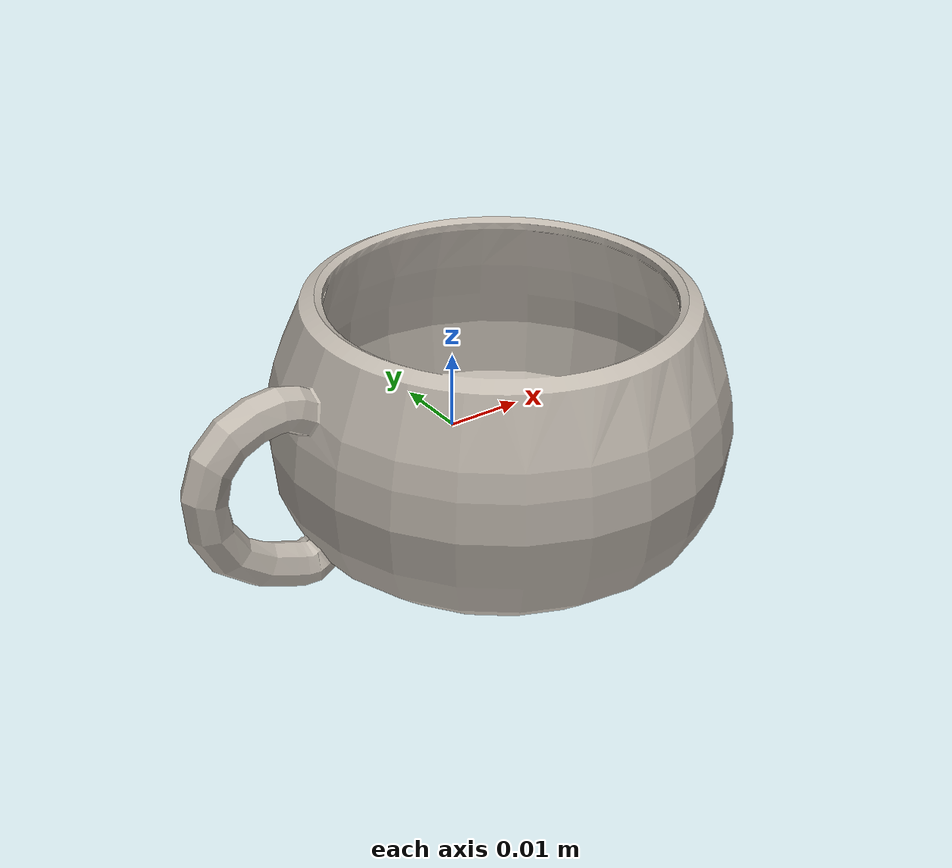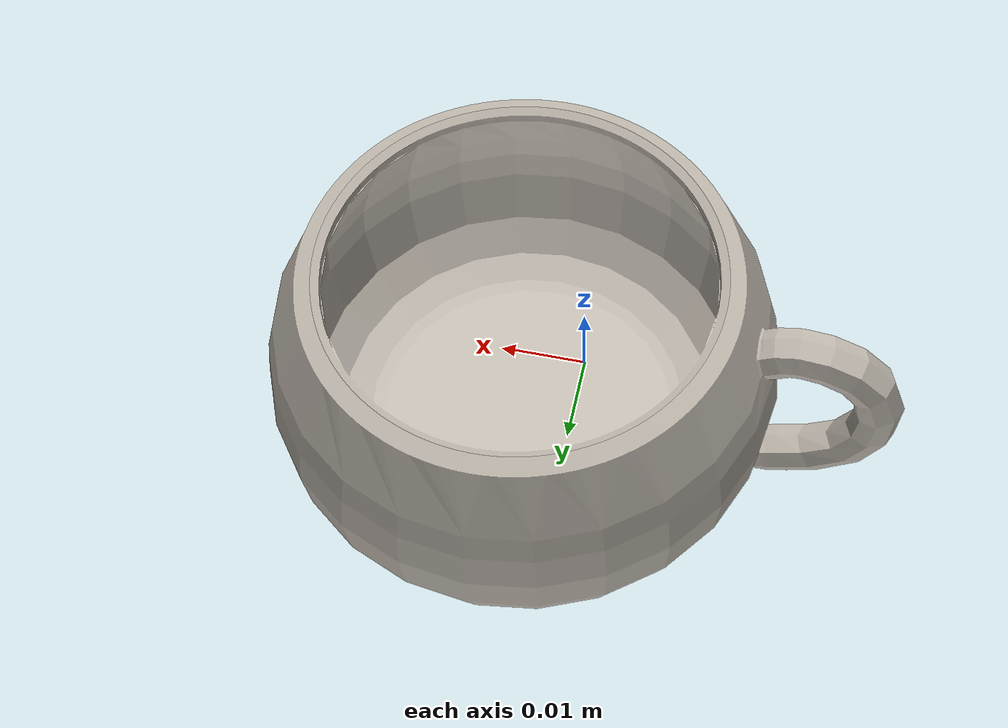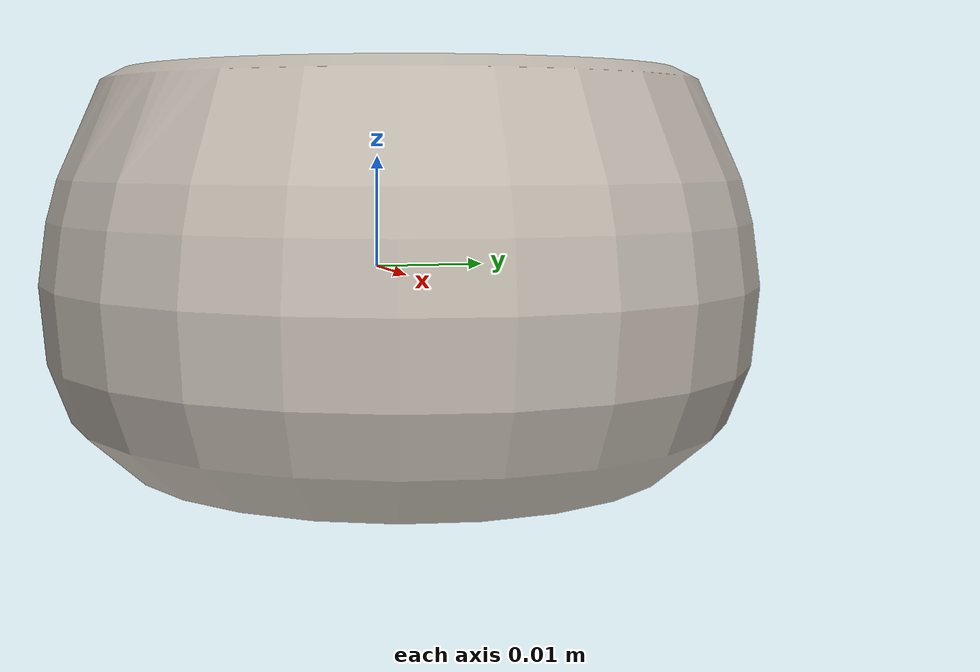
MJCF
<mujoco model="mug_8">
  <asset>
    <texture file="/home/abhiram03/Desktop/mimicgen/robosuite-kitchen/robosuite/models/assets/textures/ceramic.png" name="tex-mug_8" type="2d"/>
    <material name="mug_8" reflectance="0.5" texrepeat="1 1" texture="tex-mug_8" texuniform="false"/>
    <mesh file="visual/model_normalized_0.obj" name="model_normalized_0_vis" scale="0.07499999999999998 0.07499999999999998 0.07499999999999998" refquat="5.551115123125783e-17 0.0 0.0 0.9999999999999998"/>
    <mesh file="collision/model_normalized_collision_13.obj" name="model_normalized_collision_13._coll" scale="0.07499999999999998 0.07499999999999998 0.07499999999999998" refquat="5.551115123125783e-17 0.0 0.0 0.9999999999999998"/>
    <mesh file="collision/model_normalized_collision_15.obj" name="model_normalized_collision_15._coll" scale="0.07499999999999998 0.07499999999999998 0.07499999999999998" refquat="5.551115123125783e-17 0.0 0.0 0.9999999999999998"/>
    <mesh file="collision/model_normalized_collision_10.obj" name="model_normalized_collision_10._coll" scale="0.07499999999999998 0.07499999999999998 0.07499999999999998" refquat="5.551115123125783e-17 0.0 0.0 0.9999999999999998"/>
    <mesh file="collision/model_normalized_collision_26.obj" name="model_normalized_collision_26._coll" scale="0.07499999999999998 0.07499999999999998 0.07499999999999998" refquat="5.551115123125783e-17 0.0 0.0 0.9999999999999998"/>
    <mesh file="collision/model_normalized_collision_25.obj" name="model_normalized_collision_25._coll" scale="0.07499999999999998 0.07499999999999998 0.07499999999999998" refquat="5.551115123125783e-17 0.0 0.0 0.9999999999999998"/>
    <mesh file="collision/model_normalized_collision_5.obj" name="model_normalized_collision_5._coll" scale="0.07499999999999998 0.07499999999999998 0.07499999999999998" refquat="5.551115123125783e-17 0.0 0.0 0.9999999999999998"/>
    <mesh file="collision/model_normalized_collision_31.obj" name="model_normalized_collision_31._coll" scale="0.07499999999999998 0.07499999999999998 0.07499999999999998" refquat="5.551115123125783e-17 0.0 0.0 0.9999999999999998"/>
    <mesh file="collision/model_normalized_collision_3.obj" name="model_normalized_collision_3._coll" scale="0.07499999999999998 0.07499999999999998 0.07499999999999998" refquat="5.551115123125783e-17 0.0 0.0 0.9999999999999998"/>
    <mesh file="collision/model_normalized_collision_14.obj" name="model_normalized_collision_14._coll" scale="0.07499999999999998 0.07499999999999998 0.07499999999999998" refquat="5.551115123125783e-17 0.0 0.0 0.9999999999999998"/>
    <mesh file="collision/model_normalized_collision_28.obj" name="model_normalized_collision_28._coll" scale="0.07499999999999998 0.07499999999999998 0.07499999999999998" refquat="5.551115123125783e-17 0.0 0.0 0.9999999999999998"/>
    <mesh file="collision/model_normalized_collision_11.obj" name="model_normalized_collision_11._coll" scale="0.07499999999999998 0.07499999999999998 0.07499999999999998" refquat="5.551115123125783e-17 0.0 0.0 0.9999999999999998"/>
    <mesh file="collision/model_normalized_collision_29.obj" name="model_normalized_collision_29._coll" scale="0.07499999999999998 0.07499999999999998 0.07499999999999998" refquat="5.551115123125783e-17 0.0 0.0 0.9999999999999998"/>
    <mesh file="collision/model_normalized_collision_24.obj" name="model_normalized_collision_24._coll" scale="0.07499999999999998 0.07499999999999998 0.07499999999999998" refquat="5.551115123125783e-17 0.0 0.0 0.9999999999999998"/>
    <mesh file="collision/model_normalized_collision_1.obj" name="model_normalized_collision_1._coll" scale="0.07499999999999998 0.07499999999999998 0.07499999999999998" refquat="5.551115123125783e-17 0.0 0.0 0.9999999999999998"/>
    <mesh file="collision/model_normalized_collision_0.obj" name="model_normalized_collision_0._coll" scale="0.07499999999999998 0.07499999999999998 0.07499999999999998" refquat="5.551115123125783e-17 0.0 0.0 0.9999999999999998"/>
    <mesh file="collision/model_normalized_collision_27.obj" name="model_normalized_collision_27._coll" scale="0.07499999999999998 0.07499999999999998 0.07499999999999998" refquat="5.551115123125783e-17 0.0 0.0 0.9999999999999998"/>
    <mesh file="collision/model_normalized_collision_9.obj" name="model_normalized_collision_9._coll" scale="0.07499999999999998 0.07499999999999998 0.07499999999999998" refquat="5.551115123125783e-17 0.0 0.0 0.9999999999999998"/>
    <mesh file="collision/model_normalized_collision_19.obj" name="model_normalized_collision_19._coll" scale="0.07499999999999998 0.07499999999999998 0.07499999999999998" refquat="5.551115123125783e-17 0.0 0.0 0.9999999999999998"/>
    <mesh file="collision/model_normalized_collision_21.obj" name="model_normalized_collision_21._coll" scale="0.07499999999999998 0.07499999999999998 0.07499999999999998" refquat="5.551115123125783e-17 0.0 0.0 0.9999999999999998"/>
    <mesh file="collision/model_normalized_collision_30.obj" name="model_normalized_collision_30._coll" scale="0.07499999999999998 0.07499999999999998 0.07499999999999998" refquat="5.551115123125783e-17 0.0 0.0 0.9999999999999998"/>
    <mesh file="collision/model_normalized_collision_20.obj" name="model_normalized_collision_20._coll" scale="0.07499999999999998 0.07499999999999998 0.07499999999999998" refquat="5.551115123125783e-17 0.0 0.0 0.9999999999999998"/>
    <mesh file="collision/model_normalized_collision_2.obj" name="model_normalized_collision_2._coll" scale="0.07499999999999998 0.07499999999999998 0.07499999999999998" refquat="5.551115123125783e-17 0.0 0.0 0.9999999999999998"/>
    <mesh file="collision/model_normalized_collision_7.obj" name="model_normalized_collision_7._coll" scale="0.07499999999999998 0.07499999999999998 0.07499999999999998" refquat="5.551115123125783e-17 0.0 0.0 0.9999999999999998"/>
    <mesh file="collision/model_normalized_collision_22.obj" name="model_normalized_collision_22._coll" scale="0.07499999999999998 0.07499999999999998 0.07499999999999998" refquat="5.551115123125783e-17 0.0 0.0 0.9999999999999998"/>
    <mesh file="collision/model_normalized_collision_16.obj" name="model_normalized_collision_16._coll" scale="0.07499999999999998 0.07499999999999998 0.07499999999999998" refquat="5.551115123125783e-17 0.0 0.0 0.9999999999999998"/>
    <mesh file="collision/model_normalized_collision_8.obj" name="model_normalized_collision_8._coll" scale="0.07499999999999998 0.07499999999999998 0.07499999999999998" refquat="5.551115123125783e-17 0.0 0.0 0.9999999999999998"/>
    <mesh file="collision/model_normalized_collision_6.obj" name="model_normalized_collision_6._coll" scale="0.07499999999999998 0.07499999999999998 0.07499999999999998" refquat="5.551115123125783e-17 0.0 0.0 0.9999999999999998"/>
    <mesh file="collision/model_normalized_collision_18.obj" name="model_normalized_collision_18._coll" scale="0.07499999999999998 0.07499999999999998 0.07499999999999998" refquat="5.551115123125783e-17 0.0 0.0 0.9999999999999998"/>
    <mesh file="collision/model_normalized_collision_17.obj" name="model_normalized_collision_17._coll" scale="0.07499999999999998 0.07499999999999998 0.07499999999999998" refquat="5.551115123125783e-17 0.0 0.0 0.9999999999999998"/>
    <mesh file="collision/model_normalized_collision_12.obj" name="model_normalized_collision_12._coll" scale="0.07499999999999998 0.07499999999999998 0.07499999999999998" refquat="5.551115123125783e-17 0.0 0.0 0.9999999999999998"/>
    <mesh file="collision/model_normalized_collision_4.obj" name="model_normalized_collision_4._coll" scale="0.07499999999999998 0.07499999999999998 0.07499999999999998" refquat="5.551115123125783e-17 0.0 0.0 0.9999999999999998"/>
    <mesh file="collision/model_normalized_collision_23.obj" name="model_normalized_collision_23._coll" scale="0.07499999999999998 0.07499999999999998 0.07499999999999998" refquat="5.551115123125783e-17 0.0 0.0 0.9999999999999998"/>
    <texture type="2d" name="a6fcaafd66e6_mug__3d_asset_0_glb_texture_kd" file="visual/a6fcaafd66e6_mug__3d_asset_0_glb_texture_kd.png"/>
    <material name="Material_0" texture="a6fcaafd66e6_mug__3d_asset_0_glb_texture_kd" specular="0.5" shininess="0.5"/>
  </asset>
  <worldbody>
    <body>
      <body name="object">
        <geom solimp="0.998 0.998 0.001" solref="0.001 1" density="100" friction="0.95 0.3 0.1" type="mesh" mesh="model_normalized_0_vis" conaffinity="0" contype="0" group="1" material="Material_0"/>
        <geom solimp="0.998 0.998 0.001" solref="0.001 1" density="100" friction="0.95 0.3 0.1" type="mesh" mesh="model_normalized_collision_13._coll" group="0" rgba="0.8 0.8 0.8 0.0"/>
        <geom solimp="0.998 0.998 0.001" solref="0.001 1" density="100" friction="0.95 0.3 0.1" type="mesh" mesh="model_normalized_collision_15._coll" group="0" rgba="0.8 0.8 0.8 0.0"/>
        <geom solimp="0.998 0.998 0.001" solref="0.001 1" density="100" friction="0.95 0.3 0.1" type="mesh" mesh="model_normalized_collision_10._coll" group="0" rgba="0.8 0.8 0.8 0.0"/>
        <geom solimp="0.998 0.998 0.001" solref="0.001 1" density="100" friction="0.95 0.3 0.1" type="mesh" mesh="model_normalized_collision_26._coll" group="0" rgba="0.8 0.8 0.8 0.0"/>
        <geom solimp="0.998 0.998 0.001" solref="0.001 1" density="100" friction="0.95 0.3 0.1" type="mesh" mesh="model_normalized_collision_25._coll" group="0" rgba="0.8 0.8 0.8 0.0"/>
        <geom solimp="0.998 0.998 0.001" solref="0.001 1" density="100" friction="0.95 0.3 0.1" type="mesh" mesh="model_normalized_collision_5._coll" group="0" rgba="0.8 0.8 0.8 0.0"/>
        <geom solimp="0.998 0.998 0.001" solref="0.001 1" density="100" friction="0.95 0.3 0.1" type="mesh" mesh="model_normalized_collision_31._coll" group="0" rgba="0.8 0.8 0.8 0.0"/>
        <geom solimp="0.998 0.998 0.001" solref="0.001 1" density="100" friction="0.95 0.3 0.1" type="mesh" mesh="model_normalized_collision_3._coll" group="0" rgba="0.8 0.8 0.8 0.0"/>
        <geom solimp="0.998 0.998 0.001" solref="0.001 1" density="100" friction="0.95 0.3 0.1" type="mesh" mesh="model_normalized_collision_14._coll" group="0" rgba="0.8 0.8 0.8 0.0"/>
        <geom solimp="0.998 0.998 0.001" solref="0.001 1" density="100" friction="0.95 0.3 0.1" type="mesh" mesh="model_normalized_collision_28._coll" group="0" rgba="0.8 0.8 0.8 0.0"/>
        <geom solimp="0.998 0.998 0.001" solref="0.001 1" density="100" friction="0.95 0.3 0.1" type="mesh" mesh="model_normalized_collision_11._coll" group="0" rgba="0.8 0.8 0.8 0.0"/>
        <geom solimp="0.998 0.998 0.001" solref="0.001 1" density="100" friction="0.95 0.3 0.1" type="mesh" mesh="model_normalized_collision_29._coll" group="0" rgba="0.8 0.8 0.8 0.0"/>
        <geom solimp="0.998 0.998 0.001" solref="0.001 1" density="100" friction="0.95 0.3 0.1" type="mesh" mesh="model_normalized_collision_24._coll" group="0" rgba="0.8 0.8 0.8 0.0"/>
        <geom solimp="0.998 0.998 0.001" solref="0.001 1" density="100" friction="0.95 0.3 0.1" type="mesh" mesh="model_normalized_collision_1._coll" group="0" rgba="0.8 0.8 0.8 0.0"/>
        <geom solimp="0.998 0.998 0.001" solref="0.001 1" density="100" friction="0.95 0.3 0.1" type="mesh" mesh="model_normalized_collision_0._coll" group="0" rgba="0.8 0.8 0.8 0.0"/>
        <geom solimp="0.998 0.998 0.001" solref="0.001 1" density="100" friction="0.95 0.3 0.1" type="mesh" mesh="model_normalized_collision_27._coll" group="0" rgba="0.8 0.8 0.8 0.0"/>
        <geom solimp="0.998 0.998 0.001" solref="0.001 1" density="100" friction="0.95 0.3 0.1" type="mesh" mesh="model_normalized_collision_9._coll" group="0" rgba="0.8 0.8 0.8 0.0"/>
        <geom solimp="0.998 0.998 0.001" solref="0.001 1" density="100" friction="0.95 0.3 0.1" type="mesh" mesh="model_normalized_collision_19._coll" group="0" rgba="0.8 0.8 0.8 0.0"/>
        <geom solimp="0.998 0.998 0.001" solref="0.001 1" density="100" friction="0.95 0.3 0.1" type="mesh" mesh="model_normalized_collision_21._coll" group="0" rgba="0.8 0.8 0.8 0.0"/>
        <geom solimp="0.998 0.998 0.001" solref="0.001 1" density="100" friction="0.95 0.3 0.1" type="mesh" mesh="model_normalized_collision_30._coll" group="0" rgba="0.8 0.8 0.8 0.0"/>
        <geom solimp="0.998 0.998 0.001" solref="0.001 1" density="100" friction="0.95 0.3 0.1" type="mesh" mesh="model_normalized_collision_20._coll" group="0" rgba="0.8 0.8 0.8 0.0"/>
        <geom solimp="0.998 0.998 0.001" solref="0.001 1" density="100" friction="0.95 0.3 0.1" type="mesh" mesh="model_normalized_collision_2._coll" group="0" rgba="0.8 0.8 0.8 0.0"/>
        <geom solimp="0.998 0.998 0.001" solref="0.001 1" density="100" friction="0.95 0.3 0.1" type="mesh" mesh="model_normalized_collision_7._coll" group="0" rgba="0.8 0.8 0.8 0.0"/>
        <geom solimp="0.998 0.998 0.001" solref="0.001 1" density="100" friction="0.95 0.3 0.1" type="mesh" mesh="model_normalized_collision_22._coll" group="0" rgba="0.8 0.8 0.8 0.0"/>
        <geom solimp="0.998 0.998 0.001" solref="0.001 1" density="100" friction="0.95 0.3 0.1" type="mesh" mesh="model_normalized_collision_16._coll" group="0" rgba="0.8 0.8 0.8 0.0"/>
        <geom solimp="0.998 0.998 0.001" solref="0.001 1" density="100" friction="0.95 0.3 0.1" type="mesh" mesh="model_normalized_collision_8._coll" group="0" rgba="0.8 0.8 0.8 0.0"/>
        <geom solimp="0.998 0.998 0.001" solref="0.001 1" density="100" friction="0.95 0.3 0.1" type="mesh" mesh="model_normalized_collision_6._coll" group="0" rgba="0.8 0.8 0.8 0.0"/>
        <geom solimp="0.998 0.998 0.001" solref="0.001 1" density="100" friction="0.95 0.3 0.1" type="mesh" mesh="model_normalized_collision_18._coll" group="0" rgba="0.8 0.8 0.8 0.0"/>
        <geom solimp="0.998 0.998 0.001" solref="0.001 1" density="100" friction="0.95 0.3 0.1" type="mesh" mesh="model_normalized_collision_17._coll" group="0" rgba="0.8 0.8 0.8 0.0"/>
        <geom solimp="0.998 0.998 0.001" solref="0.001 1" density="100" friction="0.95 0.3 0.1" type="mesh" mesh="model_normalized_collision_12._coll" group="0" rgba="0.8 0.8 0.8 0.0"/>
        <geom solimp="0.998 0.998 0.001" solref="0.001 1" density="100" friction="0.95 0.3 0.1" type="mesh" mesh="model_normalized_collision_4._coll" group="0" rgba="0.8 0.8 0.8 0.0"/>
        <geom solimp="0.998 0.998 0.001" solref="0.001 1" density="100" friction="0.95 0.3 0.1" type="mesh" mesh="model_normalized_collision_23._coll" group="0" rgba="0.8 0.8 0.8 0.0"/>
      </body>
      <site rgba="0 0 0 0" size="0.005" pos="-1.1249998640994183e-09 7.322474127092816e-05 -0.029301468749999993" name="bottom_site"/>
      <site rgba="0 0 0 0" size="0.005" pos="-1.1249998640994183e-09 7.322474127092816e-05 0.029789440499999986" name="top_site"/>
      <site rgba="0 0 0 0" size="0.005" pos="0.03806817596191925 0.025641403443306145 0.00024398587499999884" name="horizontal_radius_site"/>
    </body>
  </worldbody>
</mujoco>
